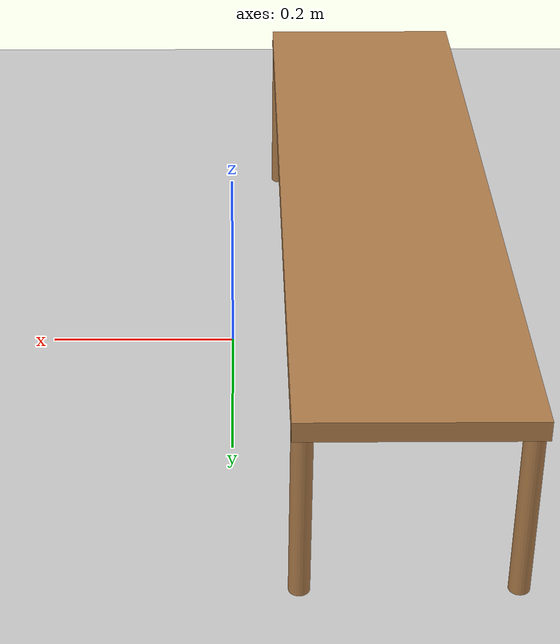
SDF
<sdf version="1.6">
 <world name="default">
  <light name="sun" type="directional">
   <pose>0 0 10 0 -0 0</pose>
   <diffuse>0.8 0.8 0.8 1</diffuse>
   <specular>0.1 0.1 0.1 1</specular>
   <attenuation>
    <range>1000</range>
    <constant>0.9</constant>
    <linear>0.01</linear>
    <quadratic>0.001</quadratic>
   </attenuation>
   <direction>-0.5 0.5 -1</direction>
  </light>
  <model name="ground_plane">
   <static>1</static>
   <link name="link">
    <collision name="collision">
     <geometry><plane><normal>0 0 1</normal><size>100 100</size></plane></geometry>
     <surface><friction><ode><mu>100</mu><mu2>50</mu2></ode></friction></surface>
    </collision>
    <visual name="visual">
     <cast_shadows>0</cast_shadows>
     <geometry><plane><normal>0 0 1</normal><size>100 100</size></plane></geometry>
     <material>
      <script><uri>file://media/materials/scripts/gazebo.material</uri><name>Gazebo/Grey</name></script>
     </material>
    </visual>
   </link>
  </model>
  <plugin name="ocra_gui_plugin" filename="libocra_gui_plugin.so"/>
  <gravity>0 0 -9.8</gravity>
  <magnetic_field>6e-06 2.3e-05 -4.2e-05</magnetic_field>
  <atmosphere type="adiabatic"/>
  <physics name="default_physics" default="0" type="ode">
   <max_step_size>0.001</max_step_size>
   <real_time_factor>1</real_time_factor>
   <real_time_update_rate>1000</real_time_update_rate>
  </physics>
  <scene><ambient>0.4 0.4 0.4 1</ambient><background>0.7 0.7 0.7 1</background><shadows>1</shadows></scene>
  <spherical_coordinates>
   <surface_model>EARTH_WGS84</surface_model>
   <latitude_deg>0</latitude_deg>
   <longitude_deg>0</longitude_deg>
   <elevation>0</elevation>
   <heading_deg>0</heading_deg>
  </spherical_coordinates>
  <model name="iCubTable">
   <pose>-0.160486 0.012897 0 0 -0 0</pose>
   <link name="leg_0">
    <pose>-0.1 0.4 0.09 0 -0 0</pose>
    <inertial>
     <mass>1</mass>
     <inertia><ixx>1</ixx><ixy>0</ixy><ixz>0</ixz><iyy>1</iyy><iyz>0</iyz><izz>1</izz></inertia>
    </inertial>
    <visual name="visual">
     <geometry><cylinder><radius>0.01</radius><length>0.18</length></cylinder></geometry>
     <material>
      <lighting>1</lighting>
      <script><uri>file://media/materials/scripts/gazebo.material</uri><name>Gazebo/Wood</name></script>
      <shader type="pixel"><normal_map>__default__</normal_map></shader>
      <ambient>0.3 0.3 0.3 1</ambient>
      <diffuse>0.7 0.7 0.7 1</diffuse>
      <specular>0.01 0.01 0.01 1</specular>
      <emissive>0 0 0 1</emissive>
     </material>
    </visual>
    <collision name="collision">
     <geometry><cylinder><radius>0.01</radius><length>0.18</length></cylinder></geometry>
     <surface>
      <friction><ode><mu>1</mu><mu2>1</mu2><fdir1>0 0 0</fdir1><slip1>0</slip1><slip2>0</slip2></ode></friction>
      <bounce><restitution_coefficient>0</restitution_coefficient><threshold>1e+06</threshold></bounce>
      <contact>
       <collide_without_contact>0</collide_without_contact>
       <collide_without_contact_bitmask>1</collide_without_contact_bitmask>
       <collide_bitmask>1</collide_bitmask>
       <ode>
        <soft_cfm>0</soft_cfm>
        <soft_erp>0.2</soft_erp>
        <kp>1e+13</kp>
        <kd>1</kd>
        <max_vel>0.01</max_vel>
        <min_depth>0</min_depth>
       </ode>
       <bullet>
        <split_impulse>1</split_impulse>
        <split_impulse_penetration_threshold>-0.01</split_impulse_penetration_threshold>
        <soft_cfm>0</soft_cfm>
        <soft_erp>0.2</soft_erp>
        <kp>1e+13</kp>
        <kd>1</kd>
       </bullet>
      </contact>
     </surface>
    </collision>
   </link>
   <link name="leg_1">
    <pose>-0.1 -0.4 0.09 0 -0 0</pose>
    <inertial>
     <mass>1</mass>
     <inertia><ixx>1</ixx><ixy>0</ixy><ixz>0</ixz><iyy>1</iyy><iyz>0</iyz><izz>1</izz></inertia>
    </inertial>
    <visual name="ModelPreview_1::leg_1::visual">
     <geometry><cylinder><radius>0.01</radius><length>0.18</length></cylinder></geometry>
     <material>
      <lighting>1</lighting>
      <script><uri>file://media/materials/scripts/gazebo.material</uri><name>Gazebo/Wood</name></script>
      <shader type="pixel"><normal_map>__default__</normal_map></shader>
      <ambient>0.3 0.3 0.3 1</ambient>
      <diffuse>0.7 0.7 0.7 1</diffuse>
      <specular>0.01 0.01 0.01 1</specular>
      <emissive>0 0 0 1</emissive>
     </material>
    </visual>
    <collision name="collision">
     <geometry><cylinder><radius>0.01</radius><length>0.18</length></cylinder></geometry>
     <surface>
      <friction><ode><mu>1</mu><mu2>1</mu2><fdir1>0 0 0</fdir1><slip1>0</slip1><slip2>0</slip2></ode></friction>
      <bounce><restitution_coefficient>0</restitution_coefficient><threshold>1e+06</threshold></bounce>
      <contact>
       <collide_without_contact>0</collide_without_contact>
       <collide_without_contact_bitmask>1</collide_without_contact_bitmask>
       <collide_bitmask>1</collide_bitmask>
       <ode>
        <soft_cfm>0</soft_cfm>
        <soft_erp>0.2</soft_erp>
        <kp>1e+13</kp>
        <kd>1</kd>
        <max_vel>0.01</max_vel>
        <min_depth>0</min_depth>
       </ode>
       <bullet>
        <split_impulse>1</split_impulse>
        <split_impulse_penetration_threshold>-0.01</split_impulse_penetration_threshold>
        <soft_cfm>0</soft_cfm>
        <soft_erp>0.2</soft_erp>
        <kp>1e+13</kp>
        <kd>1</kd>
       </bullet>
      </contact>
     </surface>
    </collision>
   </link>
   <link name="leg_2">
    <pose>0.1 0.4 0.09 0 -0 0</pose>
    <inertial>
     <mass>1</mass>
     <inertia><ixx>1</ixx><ixy>0</ixy><ixz>0</ixz><iyy>1</iyy><iyz>0</iyz><izz>1</izz></inertia>
    </inertial>
    <visual name="ModelPreview_1::leg_2::visual">
     <geometry><cylinder><radius>0.01</radius><length>0.18</length></cylinder></geometry>
     <material>
      <lighting>1</lighting>
      <script><uri>file://media/materials/scripts/gazebo.material</uri><name>Gazebo/Wood</name></script>
      <shader type="pixel"><normal_map>__default__</normal_map></shader>
      <ambient>0.3 0.3 0.3 1</ambient>
      <diffuse>0.7 0.7 0.7 1</diffuse>
      <specular>0.01 0.01 0.01 1</specular>
      <emissive>0 0 0 1</emissive>
     </material>
    </visual>
    <collision name="collision">
     <geometry><cylinder><radius>0.01</radius><length>0.18</length></cylinder></geometry>
     <surface>
      <friction><ode><mu>1</mu><mu2>1</mu2><fdir1>0 0 0</fdir1><slip1>0</slip1><slip2>0</slip2></ode></friction>
      <bounce><restitution_coefficient>0</restitution_coefficient><threshold>1e+06</threshold></bounce>
      <contact>
       <collide_without_contact>0</collide_without_contact>
       <collide_without_contact_bitmask>1</collide_without_contact_bitmask>
       <collide_bitmask>1</collide_bitmask>
       <ode>
        <soft_cfm>0</soft_cfm>
        <soft_erp>0.2</soft_erp>
        <kp>1e+13</kp>
        <kd>1</kd>
        <max_vel>0.01</max_vel>
        <min_depth>0</min_depth>
       </ode>
       <bullet>
        <split_impulse>1</split_impulse>
        <split_impulse_penetration_threshold>-0.01</split_impulse_penetration_threshold>
        <soft_cfm>0</soft_cfm>
        <soft_erp>0.2</soft_erp>
        <kp>1e+13</kp>
        <kd>1</kd>
       </bullet>
      </contact>
     </surface>
    </collision>
   </link>
   <link name="leg_3">
    <pose>0.1 -0.4 0.09 0 -0 0</pose>
    <inertial>
     <mass>1</mass>
     <inertia><ixx>1</ixx><ixy>0</ixy><ixz>0</ixz><iyy>1</iyy><iyz>0</iyz><izz>1</izz></inertia>
    </inertial>
    <visual name="ModelPreview_1::leg_3::visual">
     <geometry><cylinder><radius>0.01</radius><length>0.18</length></cylinder></geometry>
     <material>
      <lighting>1</lighting>
      <script><uri>file://media/materials/scripts/gazebo.material</uri><name>Gazebo/Wood</name></script>
      <shader type="pixel"><normal_map>__default__</normal_map></shader>
      <ambient>0.3 0.3 0.3 1</ambient>
      <diffuse>0.7 0.7 0.7 1</diffuse>
      <specular>0.01 0.01 0.01 1</specular>
      <emissive>0 0 0 1</emissive>
     </material>
    </visual>
    <collision name="collision">
     <geometry><cylinder><radius>0.01</radius><length>0.18</length></cylinder></geometry>
     <surface>
      <friction><ode><mu>1</mu><mu2>1</mu2><fdir1>0 0 0</fdir1><slip1>0</slip1><slip2>0</slip2></ode></friction>
      <bounce><restitution_coefficient>0</restitution_coefficient><threshold>1e+06</threshold></bounce>
      <contact>
       <collide_without_contact>0</collide_without_contact>
       <collide_without_contact_bitmask>1</collide_without_contact_bitmask>
       <collide_bitmask>1</collide_bitmask>
       <ode>
        <soft_cfm>0</soft_cfm>
        <soft_erp>0.2</soft_erp>
        <kp>1e+13</kp>
        <kd>1</kd>
        <max_vel>0.01</max_vel>
        <min_depth>0</min_depth>
       </ode>
       <bullet>
        <split_impulse>1</split_impulse>
        <split_impulse_penetration_threshold>-0.01</split_impulse_penetration_threshold>
        <soft_cfm>0</soft_cfm>
        <soft_erp>0.2</soft_erp>
        <kp>1e+13</kp>
        <kd>1</kd>
       </bullet>
      </contact>
     </surface>
    </collision>
   </link>
   <link name="table_top">
    <pose>0 0 0.19 0 -0 0</pose>
    <inertial>
     <mass>1</mass>
     <inertia><ixx>1</ixx><ixy>0</ixy><ixz>0</ixz><iyy>1</iyy><iyz>0</iyz><izz>1</izz></inertia>
    </inertial>
    <visual name="visual">
     <geometry><box><size>0.22 0.84 0.02</size></box></geometry>
     <material>
      <lighting>1</lighting>
      <script><uri>file://media/materials/scripts/gazebo.material</uri><name>Gazebo/Wood</name></script>
      <shader type="pixel"><normal_map>__default__</normal_map></shader>
      <ambient>0.3 0.3 0.3 1</ambient>
      <diffuse>0.7 0.7 0.7 1</diffuse>
      <specular>0.01 0.01 0.01 1</specular>
      <emissive>0 0 0 1</emissive>
     </material>
    </visual>
    <collision name="collision">
     <geometry><box><size>0.22 0.64 0.02</size></box></geometry>
     <surface>
      <friction><ode><mu>1</mu><mu2>1</mu2><fdir1>0 0 0</fdir1><slip1>0</slip1><slip2>0</slip2></ode></friction>
      <bounce><restitution_coefficient>0</restitution_coefficient><threshold>1e+06</threshold></bounce>
      <contact>
       <collide_without_contact>0</collide_without_contact>
       <collide_without_contact_bitmask>1</collide_without_contact_bitmask>
       <collide_bitmask>1</collide_bitmask>
       <ode>
        <soft_cfm>0</soft_cfm>
        <soft_erp>0.2</soft_erp>
        <kp>1e+13</kp>
        <kd>1</kd>
        <max_vel>0.01</max_vel>
        <min_depth>0</min_depth>
       </ode>
       <bullet>
        <split_impulse>1</split_impulse>
        <split_impulse_penetration_threshold>-0.01</split_impulse_penetration_threshold>
        <soft_cfm>0</soft_cfm>
        <soft_erp>0.2</soft_erp>
        <kp>1e+13</kp>
        <kd>1</kd>
       </bullet>
      </contact>
     </surface>
    </collision>
   </link>
   <static>0</static>
   <joint name="leg_0_table" type="fixed"><parent>leg_0</parent><child>table_top</child></joint>
   <joint name="leg_1_table" type="fixed"><parent>leg_1</parent><child>table_top</child></joint>
   <joint name="leg_2_table" type="fixed"><parent>leg_2</parent><child>table_top</child></joint>
   <joint name="leg_3_table" type="fixed"><parent>leg_3</parent><child>table_top</child></joint>
   <joint name="leg_0_ground" type="fixed"><parent>world</parent><child>leg_0</child></joint>
   <joint name="leg_1_ground" type="fixed"><parent>world</parent><child>leg_1</child></joint>
   <joint name="leg_2_ground" type="fixed"><parent>world</parent><child>leg_2</child></joint>
   <joint name="leg_3_ground" type="fixed"><parent>world</parent><child>leg_3</child></joint>
  </model>
 </world>
</sdf>
